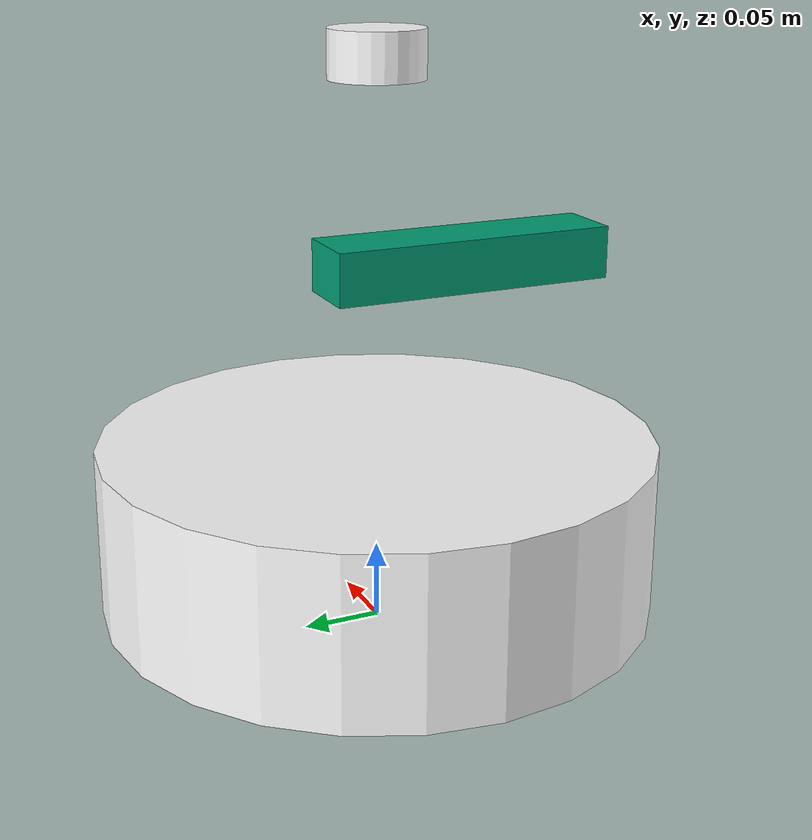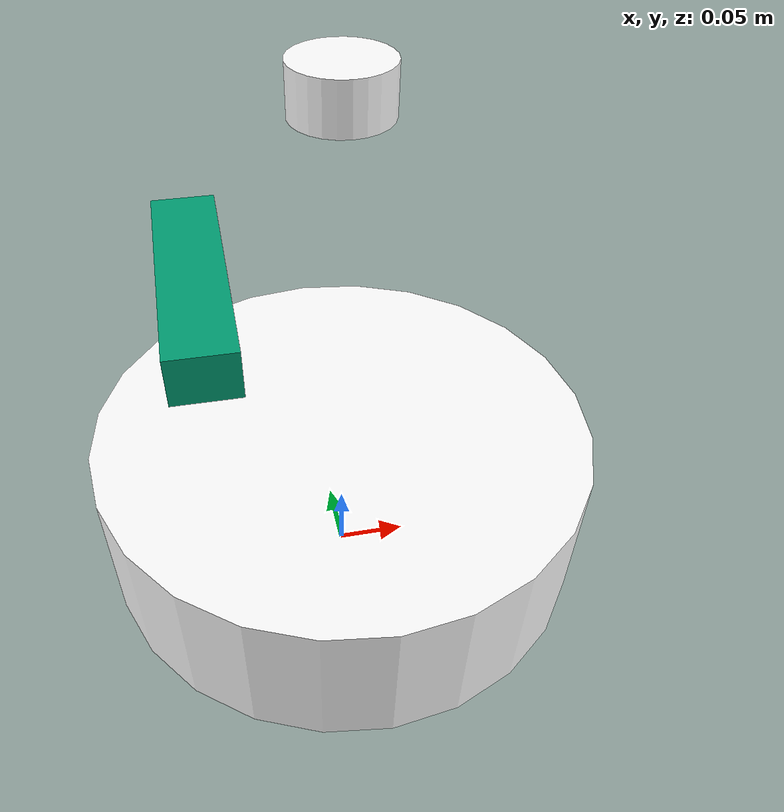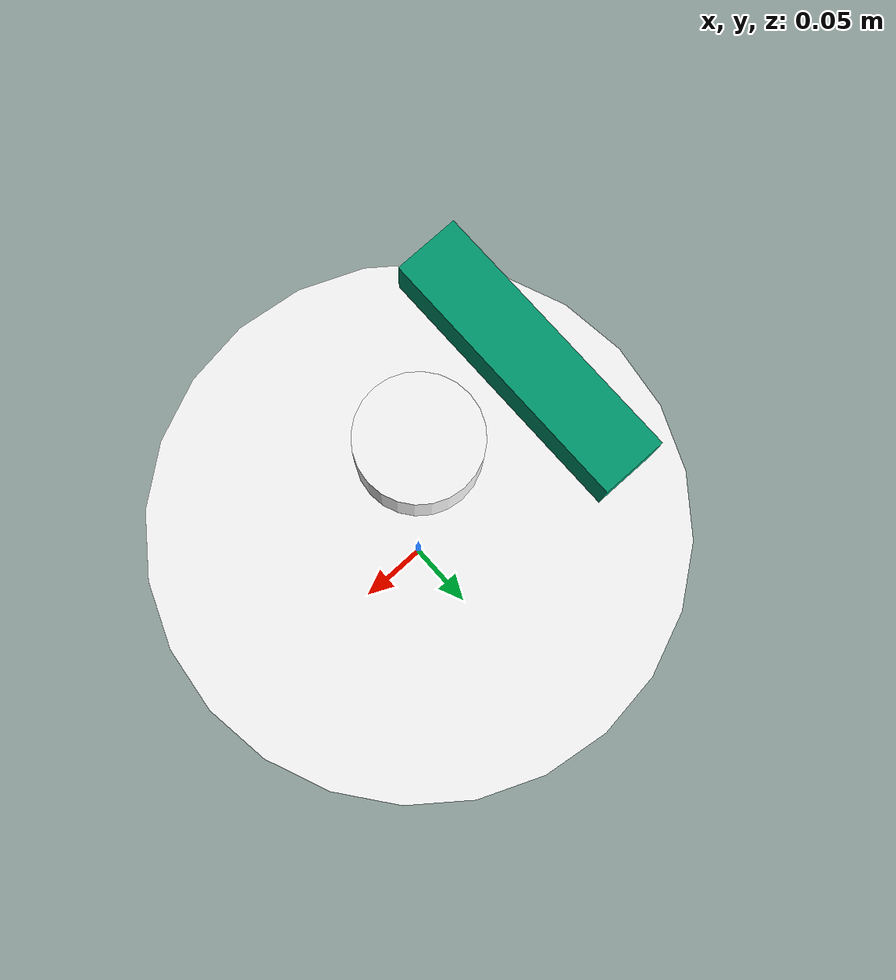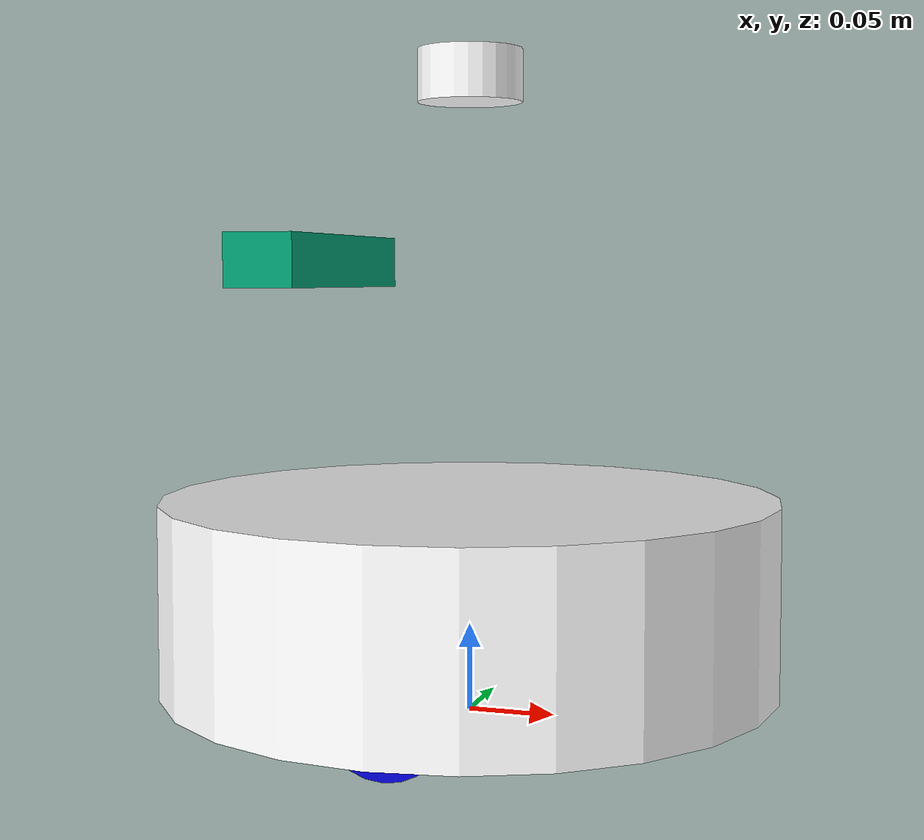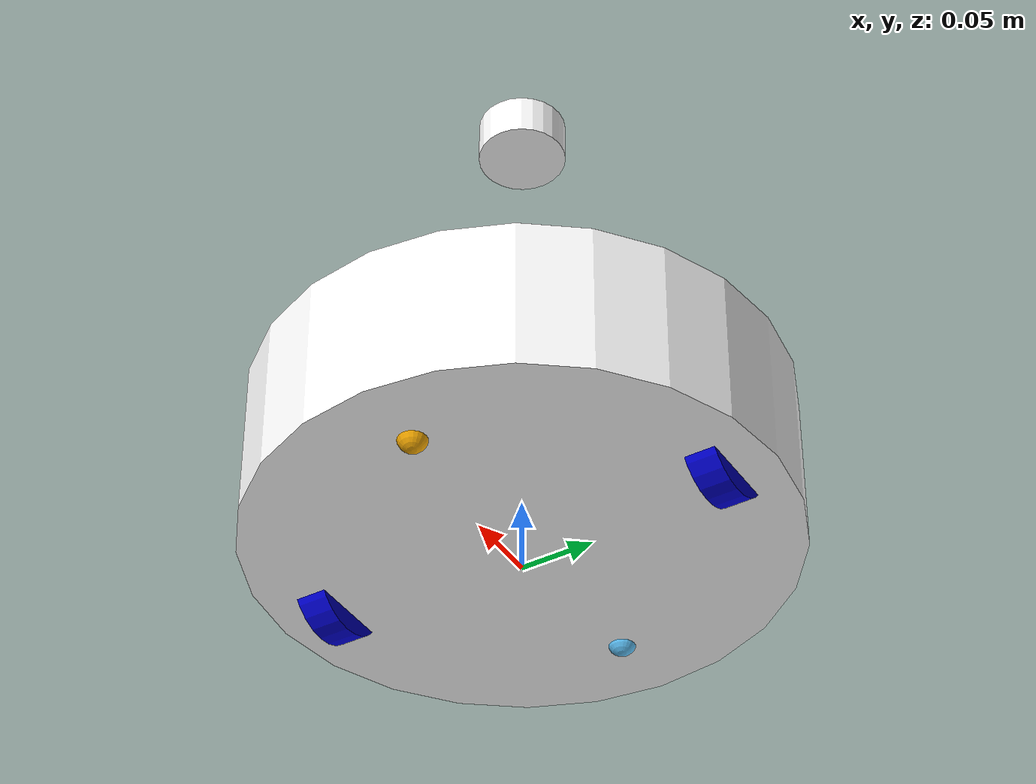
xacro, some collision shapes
<?xml version="1.0" ?>
<robot name="simple_robot" xmlns:xacro="http://ros.org/wiki/xacro" >
<xacro:include filename = "$(find robot_pack)/urdf/robot.plugins.xacro"/>
<xacro:include filename = "$(find robot_pack)/urdf/common_properties.xacro"/>

<xacro:property name="astra_cam_py" value="-0.0125"/>
<xacro:property name="astra_depth_rel_rgb_py" value="0.0250" />
<xacro:property name="astra_cam_rel_rgb_py"   value="-0.0125" />
<xacro:property name="astra_dae_display_scale"   value="0.8" />
<xacro:property name="M_PI"   value="3.142" />

<!--INERTIAL VALUES ARE NOT ENTIRELY ACCURATE-->

    <!-- Gazebo plugin initialization -->
    <gazebo>
        <plugin name="gazebo_ros_control" filename="libgazebo_ros_control.so">
            <robotNamespace>/simple_robot</robotNamespace> This robot name is the same as robot name at the top
        </plugin>
    </gazebo>
     <!-- ////////////////////////// === BASE FOOTPRINT ==== //////////////////////////////////// -->

    <link name="base_footprint"/>

     <!-- ////////////////////////// === BASE LINK ==== //////////////////////////////////// -->
   <!-- Main base link -->
    <link name="base_link">
        <visual>
            <origin xyz="0.001 0 -0.034" rpy="0 0 ${M_PI/2}"/>
                <geometry>
                    <mesh filename="package://robot_pack/meshes/base_plate.dae" />
                </geometry>
            <material name = "white"/>
        </visual>

        <collision>
            <geometry>
              <cylinder length="0.10938" radius="0.178"/>
            </geometry>
            <origin xyz="0.0 0 0.05949" rpy="0 0 0"/>
        </collision>

        <inertial>
        <!-- COM experimentally determined -->
        <origin xyz="0.01 0 0"/>
        <mass value="5"/> <!-- 2.4/2.6 kg for small/big battery pack -->

        <inertia ixx="0.0445899935" ixy="0.0" ixz="0.0"
                 iyy="0.0445899935" iyz="0.0"
                 izz="0.07920999999999999" />
       </inertial>
    </link>

    This is for color and physical properties in Gazebo, color won't work with the material tag in gazebo
    only for URDF coloring
    <gazebo reference="base_link">
        <mu1>10.0</mu1>
        <mu2>10.0</mu2>
        <material>Gazebo/DarkGrey</material>
    </gazebo>

<!--/////////////////////////////////////////////sensor laser/////////-->

<link name="sensor_laser">
    <visual>
      <origin xyz="0 0 0" rpy="0 0 0" />
      <geometry>
        <cylinder radius="0.03" length="0.03"/>
      </geometry>
      <material name="white" />
    </visual>

    <collision>
      <origin xyz="0 0 0" rpy="0 0 0"/>
      <geometry>
        <cylinder radius="0.03" length="0.03"/>
      </geometry>
    </collision>

    <inertial> wrong inertial values.....
        <mass value="0.01" />
        <origin xyz="0 0 0" />
        <inertia ixx="0.001" ixy="0.0" ixz="0.0"
                 iyy="0.001" iyz="0.0"
                 izz="0.001" />
      </inertial>
  </link>

<!--/////////////////////////////////////////////IMU sensor/////////-->
<link name="imu_sensor">
    <visual>
      <origin xyz="0 0 0" rpy="0 0 0" />
      <geometry>
        <cylinder radius="0.009" length="0.009"/>
      </geometry>
      <material name="white" />
    </visual>

    <collision>
      <origin xyz="0 0 0" rpy="0 0 0"/>
      <geometry>
        <cylinder radius="0.009" length="0.009"/>
      </geometry>
    </collision>

    <inertial> wrong inertial values.....
        <mass value="0.01" />
        <origin xyz="0 0 0" />
        <inertia ixx="0.001" ixy="0.0" ixz="0.0"
                 iyy="0.001" iyz="0.0"
                 izz="0.001" />
      </inertial>
  </link>

    <gazebo reference="imu_sensor">
        <mu1>10.0</mu1>
        <mu2>10.0</mu2>
        <material>Gazebo/Yellow</material>
    </gazebo>

    <!-- ////////////////////////// === WHEEL LINKS ==== //////////////////////////////////// -->
<!--wheel 1--> left  wheel
    <link name="wheel_link_1">
        <collision>
            <origin xyz="0 0 0" rpy="0 0 0"/>
            <geometry>
                <mesh filename="package://robot_pack/meshes/wheel.dae"/>
            </geometry>
        </collision>

        <visual>
            <origin xyz="0 0 0" rpy="0 0 0"/>
            <geometry>
                <cylinder length="0.0206" radius="0.0352"/>
            </geometry>
            <material name="blue"/>
        </visual>

        <inertial>
            <mass value="0.01" />
            <origin xyz="0 0 0" />
            <inertia ixx="0.001" ixy="0.0" ixz="0.0"
                     iyy="0.001" iyz="0.0"
                     izz="0.001" />
      </inertial>
    </link>

    <gazebo reference="wheel_link_1">
        <mu1>1.0</mu1>
        <mu2>1.0</mu2>
        <kp>1000000.0</kp>
        <kd>100.0</kd>
        <minDepth>0.001</minDepth>
        <maxVel>1.0</maxVel>
        <material>Gazebo/Red</material>
    </gazebo>

<!--wheel 2--> right wheel
    <link name="wheel_link_2">
        <collision>
            <origin xyz="0 0 0" rpy="0 0 0"/>

            <geometry>
              <mesh filename="package://robot_pack/meshes/wheel.dae"/>
            </geometry>
        </collision>

        <visual>
            <origin xyz="0 0 0" rpy="0 0 0"/>
            <geometry>
                <cylinder length="0.0206" radius="0.0350"/>
            </geometry>
            <material name="blue"/>
        </visual>

        <inertial>
            <mass value="0.01" />
            <origin xyz="0 0 0" />
            <inertia ixx="0.001" ixy="0.0" ixz="0.0"
                     iyy="0.001" iyz="0.0"
                     izz="0.001" />
       </inertial>
    </link>

    <gazebo reference="wheel_link_2">
        <mu1>1.0</mu1>
        <mu2>1.0</mu2>
        <kp>1000000.0</kp>
        <kd>100.0</kd>
        <minDepth>0.001</minDepth>
        <maxVel>1.0</maxVel> <mu1>10.0</mu1>
        <mu2>10.0</mu2>
        <material>Gazebo/Red</material>
    </gazebo>

<!--    caster link-->
    <link name="caster_front_link">
      <collision>
        <geometry>
          <cylinder length="0.0176" radius="0.017"/>
        </geometry>
        <origin rpy="0 0 0" xyz="0 0 0"/>
      </collision>
      <inertial>
        <mass value="0.01" />
        <origin xyz="0 0 0" />
        <inertia ixx="0.001" ixy="0.0" ixz="0.0"
                 iyy="0.001" iyz="0.0"
                 izz="0.001" />
      </inertial>
    </link>

    <link name="caster_back_link">
      <collision>
        <geometry>
          <cylinder length="0.0176" radius="0.017"/>
        </geometry>
        <origin rpy="0 0 0" xyz="0 0 0"/>
      </collision>
      <inertial>
        <mass value="0.01" />
        <origin xyz="0 0 0" />
        <inertia ixx="0.001" ixy="0.0" ixz="0.0"
                 iyy="0.001" iyz="0.0"
                 izz="0.001" />
      </inertial>
    </link>

<!--    caster ball-->
    <link name="front_caster_ball">
        <visual>
            <geometry>
              <sphere radius="0.01"/>
            </geometry>
            <origin rpy="0 0 0" xyz="0 0 0"/>
      </visual>
      <collision>
            <geometry>
              <sphere radius="0.0265"/>  higher collision creates a bigger ball to stablize the robot
            </geometry>
            <origin rpy="0 0 0" xyz="0 0 0"/>
      </collision>
      <inertial>
        <mass value="1" />
        <origin xyz="0 0 0" />
        <inertia ixx="0.00011560000000000002" ixy="0.0" ixz="0.0"
                 iyy="0.00011560000000000002" iyz="0.0"
                 izz="0.00011560000000000002" />
      </inertial>
    </link>

    <link name="back_caster_ball">
        <visual>
            <geometry>
              <sphere radius="0.01"/>
            </geometry>
            <origin rpy="0 0 0" xyz="0 0 0"/>
      </visual>
      <collision>
            <geometry>
              <sphere radius="0.0265"/>
            </geometry>
            <origin rpy="0 0 0" xyz="0 0 0"/>
      </collision>
      <inertial>
        <mass value="1" />
        <origin xyz="0 0 0" />
        <inertia ixx="0.00011560000000000002" ixy="0.0" ixz="0.0"
                 iyy="0.00011560000000000002" iyz="0.0"
                 izz="0.00011560000000000002" />
      </inertial>
    </link>

        <!-- ////////////////////////// === Joints === //////////////////////////////////// -->
  I can spawn all the camera links at origin 0 0 0  but I use the joints to move them to the positions I want them in.

     <joint name="base_joint" type="fixed">
      <origin xyz="0 0 0.0102" rpy="0 0 0" />
      <parent link="base_footprint"/>
      <child link="base_link" />
    </joint>

     <joint name="caster_front_joint" type="fixed">
      <parent link="base_link"/>
      <child link="caster_front_link"/>
      <origin xyz="0.115 0.0 0.007" rpy="${-M_PI/2} 0 0"/>
    </joint>

    <joint name="caster_back_joint" type="fixed">
      <parent link="base_link"/>
      <child link="caster_back_link"/>
      <origin xyz="-0.135 0.0 0.009" rpy="${-M_PI/2} 0 0"/>
    </joint>

    <joint name="caster_back_ball_joint" type="fixed">
      <parent link="caster_back_link"/>
      <child link="back_caster_ball"/>
      <origin xyz="0.01 0.0 0.0" rpy="${-M_PI/2} 0 0"/>
    </joint>

    <joint name="caster_front_ball_joint" type="fixed">
      <parent link="caster_front_link"/>
      <child link="front_caster_ball"/>
      <origin xyz="0.01 0.0 0.0" rpy="${-M_PI/2} 0 0"/>
    </joint>

    <!-- joint = base_link to wheel_1_link -->       wheel joint 1--top left
    <joint name="wheel_1_joint" type="continuous">
        <parent link="base_link"/>
        <child link="wheel_link_1"/>
        <origin xyz="0 ${0.28/2} 0.026" rpy="${-M_PI/2} 0 0"/>
        <axis xyz="0 0 1"/>
    </joint>

    <!-- joint = base_link to wheel_2_link -->       wheel joint 2  --top right
    <joint name="wheel_2_joint" type="continuous">
        <parent link="base_link"/>
        <child link="wheel_link_2"/>
        <origin xyz="0.00 -${0.28/2} 0.026" rpy="${-M_PI/2} 0 0"/>
        <axis xyz="0 0 1"/>
    </joint>

    <!--    sensor laser-->
     <joint name="joint_sensor_laser" type="fixed">
        <origin xyz="0.0 0 0.355" rpy="0 0 0"/>
        <parent link="base_link"/>
        <child link="sensor_laser"/>
      </joint>
<!--   imu sensor-->
      <joint name="joint_imu_sensor" type="fixed">
        <origin xyz="0.0 0 0.057" rpy="0 0 0"/>
        <parent link="base_link"/>
        <child link="imu_sensor"/>
      </joint>

    <transmission name="tran1">
        <type>transmission_interface/SimpleTransmission</type>
        <joint name="wheel_1_joint">
            <hardwareInterface>EffortJointInterface</hardwareInterface>
        </joint>
        <actuator name="motor1">
            <hardwareInterface>EffortJointInterface</hardwareInterface>
            <mechanicalReduction>1</mechanicalReduction>
        </actuator>
    </transmission>

    <transmission name="tran2">
        <type>transmission_interface/SimpleTransmission</type>
        <joint name="wheel_2_joint">
            <hardwareInterface>EffortJointInterface</hardwareInterface>
        </joint>
        <actuator name="motor2">
            <hardwareInterface>EffortJointInterface</hardwareInterface>
            <mechanicalReduction>1</mechanicalReduction>
        </actuator>
    </transmission>

    ///////////////////////////////////////////////////////////////////////////////////////////
    <!-- Adding Astra -->
    <link name="camera_link">
      <visual>
            <origin xyz="-0.04 0.02 -0.01" rpy="${M_PI/2} 0 ${M_PI/2}"/>
            <geometry>
              <mesh filename="package://robot_pack/meshes/astra.dae" scale="${astra_dae_display_scale} ${astra_dae_display_scale} ${astra_dae_display_scale}"/>
            </geometry>
      </visual>

      <collision>
            <origin xyz="0.0 0.0 0.0" rpy="0 0 0" />
            <geometry>
            <box size="0.0400 0.1650 0.0300"/>
      </geometry>
      </collision>

      <inertial>
            <mass value="0.564" />
            <origin xyz="0 0 0" />
            <inertia ixx="0.003881243" ixy="0.0" ixz="0.0"
                     iyy="0.000498940" iyz="0.0"
                     izz="0.003879257" />
      </inertial>
    </link>

     <link name="camera_rgb_frame"/>
    <link name="camera_rgb_optical_frame"/>
    <link name="camera_depth_optical_frame"/>
     <link name="camera_depth_frame"/>

    <joint name="camera_rgb_joint" type="fixed">
      <origin xyz="-0.09 0 0.25"
              rpy="0 0 0"/>
      <parent link="base_link"/>
      <child link="camera_rgb_frame" />
    </joint>

    <joint name="camera_rgb_optical_joint" type="fixed">
      <origin xyz="0 0 0" rpy="${-M_PI/2} 0 ${-M_PI/2}" />
      <parent link="camera_rgb_frame" />
      <child link="camera_rgb_optical_frame" />
    </joint>

    <joint name="camera_joint" type="fixed">
      <origin xyz="0 ${astra_cam_rel_rgb_py} 0"
              rpy="0 0 0"/>
      <parent link="camera_rgb_frame"/>
      <child link="camera_link"/>
    </joint>

    <joint name="camera_depth_joint" type="fixed">
      <origin xyz="0 ${astra_depth_rel_rgb_py} 0" rpy="0 0 0" />
      <parent link="camera_rgb_frame" />
      <child link="camera_depth_frame" />
    </joint>

    <joint name="camera_depth_optical_joint" type="fixed">
      <origin xyz="0 0 0" rpy="${-M_PI/2} 0 ${-M_PI/2}" />
      <parent link="camera_depth_frame" />
      <child link="camera_depth_optical_frame" />
    </joint>

</robot>

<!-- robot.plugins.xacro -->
<robot name="simple_robot" xmlns:xacro="http://www.ros.org/wiki/xacro" >
<xacro:property name="M_PI"   value="3.142" />

  <material name="blue">
	    <color rgba="0 0 0.8 1"/>
	</material>

	<material name="white">
	    <color rgba="1 1 1 1"/>
	</material>

	<material name="yellow">
	    <color rgba="1 0.8 0.3 0.7"/>
	</material>

	<material name="gray">
	    <color rgba="0.7 0.7 0.7 1.0"/>
	</material>

	<material name="darkgray">
	   <color rgba="0.3 0.3 0.3 1.0"/>
	</material>

<!-- wheel plugin-->
    <gazebo>
      <plugin name="differential_drive_controller" filename="libgazebo_ros_diff_drive.so">
        <legacyMode>false</legacyMode>
        <alwaysOn>true</alwaysOn>
        <updateRate>20.0</updateRate>
        <leftJoint>wheel_1_joint</leftJoint>
        <rightJoint>wheel_2_joint</rightJoint>
        <wheelSeparation>0.30</wheelSeparation>
	    <wheelDiameter>0.09</wheelDiameter>
	    <wheelTorque>20</wheelTorque>
        <wheelAcceleration>1.0</wheelAcceleration>
        <robotBaseFrame>base_footprint</robotBaseFrame>
        <commandTopic>/cmd_vel</commandTopic>
        <odometryTopic>/odom</odometryTopic>
        <odometryFrame>odom</odometryFrame>
        <broadcastTF>1</broadcastTF>
      </plugin>
    </gazebo>

    <gazebo reference="sensor_laser">
    <sensor type="ray" name="head_hokuyo_sensor">
      <pose>0 0 0 0 0 0</pose>
      <visualize>true</visualize>
      <update_rate>40</update_rate>
      <ray>
        <scan>
          <horizontal>
            <samples>720</samples>
            <resolution>1</resolution>
            <min_angle>-1.570796</min_angle>
            <max_angle>1.570796</max_angle>
          </horizontal>
        </scan>
        <range>
          <min>0.10</min>
          <max>10.0</max>
          <resolution>0.01</resolution>
        </range>
        <noise>
          <type>gaussian</type>
          <mean>0.0</mean>
          <stddev>0.01</stddev>
        </noise>
      </ray>
      <plugin name="gazebo_ros_head_hokuyo_controller" filename="libgazebo_ros_laser.so">
        <topicName>simple_robot/laser/scan</topicName>
        <frameName>sensor_laser</frameName>
      </plugin>
    </sensor>
  </gazebo>

    <gazebo reference="imu_sensor">
    <gravity>true</gravity>
    <sensor name="imu_sensor" type="imu">
      <always_on>true</always_on>
      <update_rate>20</update_rate>
      <visualize>true</visualize>
      <topic>/simple_robot/imu</topic>
      <plugin filename="libgazebo_ros_imu_sensor.so" name="imu_plugin">
        <topicName>imu</topicName>
        <bodyName>imu_sensor</bodyName>
        <updateRateHZ>10.0</updateRateHZ>
        <gaussianNoise>0.0</gaussianNoise>
        <xyzOffset>0 0 0</xyzOffset>
        <rpyOffset>0 0 0</rpyOffset>
        <frameName>imu_sensor</frameName>
        <initialOrientationAsReference>false</initialOrientationAsReference>
      </plugin>
      <pose>0 0 0 0 0 0</pose>
    </sensor>
  </gazebo>

 <gazebo reference="camera_link">
      <sensor type="depth" name="camera_link_camera">
        <always_on>true</always_on>
        <update_rate>20.0</update_rate>
        <camera>
          <horizontal_fov>${60.0*M_PI/180.0}</horizontal_fov>
          <image>
            <format>B8G8R8</format>
            <width>640</width>
            <height>480</height>
          </image>
          <clip>
            <near>0.05</near>
            <far>8.0</far>
          </clip>
        </camera>
        <plugin name="camera_link_controller" filename="libgazebo_ros_openni_kinect.so">
          <alwaysOn>true</alwaysOn>
          <updateRate>10</updateRate>
          <imageTopicName>simple_robot/color/image_raw</imageTopicName>
          <depthImageTopicName>simple_robot/depth/image_raw</depthImageTopicName>
          <pointCloudTopicName>simple_robot/depth/points</pointCloudTopicName>
          <cameraInfoTopicName>simple_robot/color/camera_info</cameraInfoTopicName>
          <depthImageCameraInfoTopicName>simple_robot/depth/camera_info</depthImageCameraInfoTopicName>
          <frameName>camera_depth_optical_frame</frameName>
          <baseline>0.1</baseline>
          <distortionK1>0.00000001</distortionK1>
          <distortionK2>0.00000001</distortionK2>
          <distortionK3>0.00000001</distortionK3>
          <distortionT1>0.00000001</distortionT1>
          <distortionT2>0.00000001</distortionT2>
          <pointCloudCutoff>0.4</pointCloudCutoff>
        </plugin>
      </sensor>
    </gazebo>

</robot>
